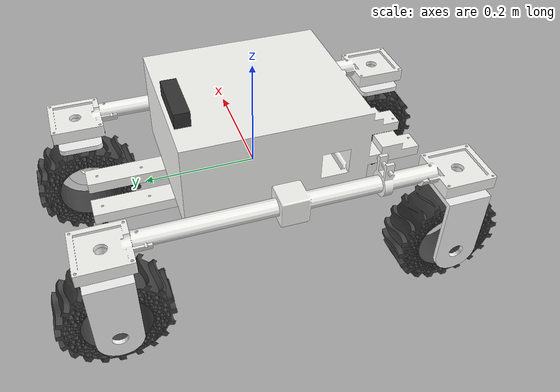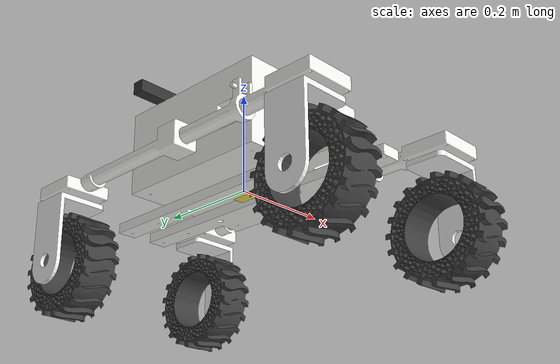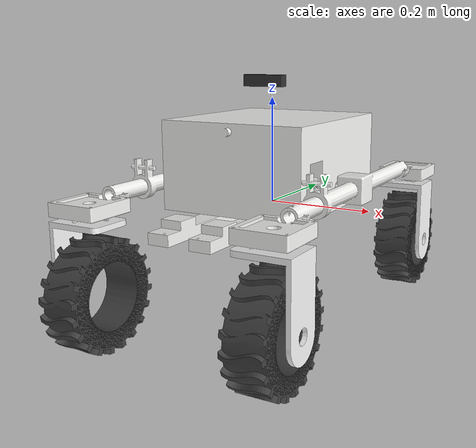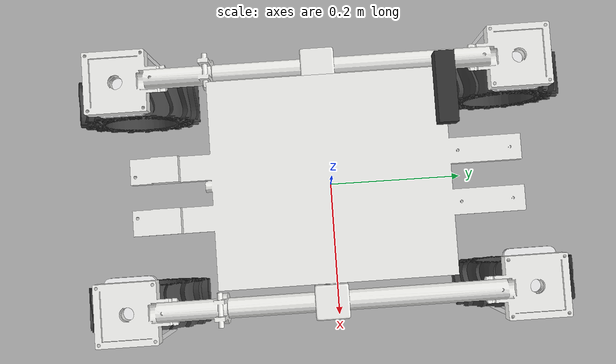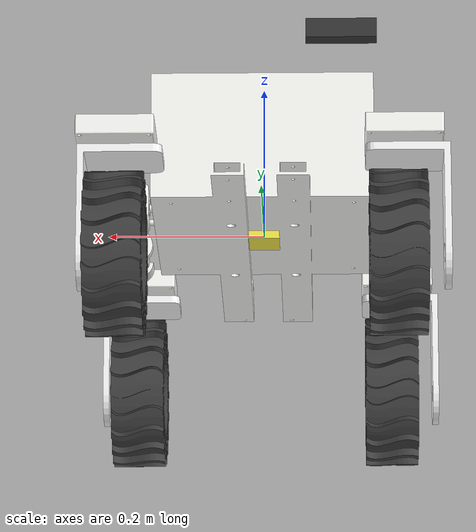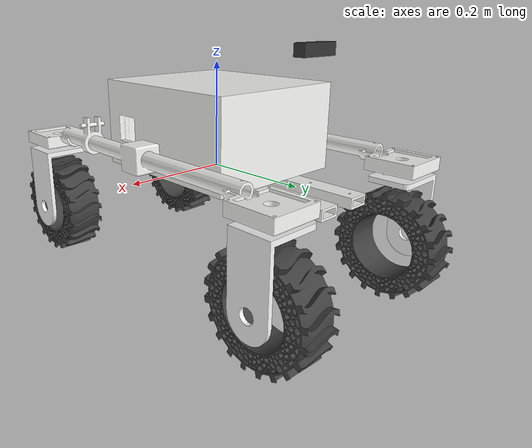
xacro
<?xml version="1.0" encoding="UTF-8"?>
<robot name="robot_mk2" xmlns:xacro="http://www.ros.org/wiki/xacro">
    <xacro:include filename="$(find rovermk2_description)/urdf/rovermk2.urdf" />
    <xacro:include filename="$(find rovermk2_description)/urdf/B2_mark_sensors.urdf" />

    <ros2_control name="rovermk2" type="system">
        <hardware>
            <plugin>gz_ros2_control/GazeboSimSystem</plugin>
        </hardware>

        <!-- Drive Joints -->
        <joint name="wheelFL_joint">
            <command_interface name="velocity" />
            <state_interface name="velocity" />
            <state_interface name="position" />
        </joint>
        <joint name="wheelFR_joint">
            <command_interface name="velocity" />
            <state_interface name="velocity" />
            <state_interface name="position" />
        </joint>
        <joint name="wheelBL_joint">
            <command_interface name="velocity" />
            <state_interface name="velocity" />
            <state_interface name="position" />
        </joint>
        <joint name="wheelBR_joint">
            <command_interface name="velocity" />
            <state_interface name="velocity" />
            <state_interface name="position" />
        </joint>

        <!-- Steer Joints -->
        <joint name="steerFL_joint">
            <command_interface name="position" />
            <state_interface name="position" />
            <state_interface name="velocity" />
        </joint>
        <joint name="steerFR_joint">
            <command_interface name="position" />
            <state_interface name="position" />
            <state_interface name="velocity" />
        </joint>
        <joint name="steerBL_joint">
            <command_interface name="position" />
            <state_interface name="position" />
            <state_interface name="velocity" />
        </joint>
        <joint name="steerBR_joint">
            <command_interface name="position" />
            <state_interface name="position" />
            <state_interface name="velocity" />
        </joint>
    </ros2_control>

    <!-- Ignition ros2_control plugin -->
    <gazebo>
        <plugin filename="libgz_ros2_control-system.so"
            name="gz_ros2_control::GazeboSimROS2ControlPlugin">
            <parameters>$(find rovermk2_description)/config/controller.yaml</parameters>
        </plugin>
    </gazebo>

    <gazebo>
        <plugin
            filename="ignition-gazebo-odometry-publisher-system"
            name="ignition::gazebo::systems::OdometryPublisher">
            <odom_frame>odom</odom_frame>
            <robot_base_frame>base_link</robot_base_frame>
            <odom_topic>/odom_raw</odom_topic>
            <tf_topic>/model/robot_mk2/tf</tf_topic>
            <update_rate>50</update_rate>
        </plugin>
    </gazebo>

</robot>

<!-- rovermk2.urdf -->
<robot name="rovermk2">

    <!-- Base Link  -->

    <link name="base_link">
        <inertial>
            <origin xyz="1.5107E-12 -0.010391 0.059342" rpy="0 0 0" />
            <mass value="20.0" />
            <inertia ixx="0.34424" ixy="1.4503E-11" ixz="-4.4546E-13"
                iyy="0.18723"
                iyz="0.00054354" izz="0.45979" />
        </inertial>
        <visual>
            <origin xyz="0 0 0" rpy="0 0 0" />
            <geometry>
                <mesh filename="package://rovermk2_description/meshes/base_link.STL" />
            </geometry>
            <material name="">
                <color rgba="0.96471 0.96471 0.95294 1" />
            </material>
        </visual>
        <collision>
            <origin xyz="0 0 0.05" rpy="0 0 0" />
            <geometry>
                <box size="0.75 0.35 0.15" />
            </geometry>
        </collision>
    </link>

    <!-- Suspension Links -->

    <link name="suspension_left">
        <inertial>
            <origin xyz="-0.085081 0.00042119 -0.0073347" rpy="0 0 0" />
            <mass value="5.0" />
            <inertia ixx="0.0029927" ixy="-1.1983E-09" ixz="-2.3018E-08"
                iyy="0.0104136"
                iyz="1.5973E-09" izz="0.0125038" />
        </inertial>
        <visual>
            <origin xyz="0.08875 0 0" rpy="0 0 0" />
            <geometry>
                <mesh filename="package://rovermk2_description/meshes/suspension_1.STL" />
            </geometry>
            <material name="">
                <color rgba="0.96471 0.96471 0.95294 1" />
            </material>
        </visual>
        <collision>
            <origin xyz="-0.085 0 -0.007" rpy="0 0 0" />
            <geometry>
                <box size="0.65 0.05 0.04" />
            </geometry>
        </collision>
    </link>

    <link name="suspension_right">
        <inertial>
            <origin xyz="0.0048172 -0.047933 -0.0073349" rpy="0 0 0" />
            <mass value="5.0" />
            <inertia ixx="0.0029927" ixy="-1.1983E-09" ixz="-2.3018E-08"
                iyy="0.0104136"
                iyz="1.5973E-09" izz="0.0125038" />
        </inertial>
        <visual>
            <origin xyz="0 0.0475 0" rpy="0 0 0" />
            <geometry>
                <mesh filename="package://rovermk2_description/meshes/suspension_2.STL" />
            </geometry>
            <material name="">
                <color rgba="0.96471 0.96471 0.95294 1" />
            </material>
        </visual>
        <collision>
            <origin xyz="0.005 -0.048 -0.007" rpy="0 0 0" />
            <geometry>
                <box size="0.65 0.05 0.04" />
            </geometry>
        </collision>
    </link>

    <!-- Suspension Joints Closed Loop thus with gazebo tags -->

    <joint name="susleft_joint" type="fixed">
        <origin xyz="-0.175 -0.01 0.043" rpy="0 0 -1.5708" />
        <parent link="base_link" />
        <child link="suspension_left" />
        <axis xyz="0 1 0" />
        <limit lower="-0.174" upper="0.174" effort="100" velocity="1" />
    </joint>

    <joint name="susright_joint" type="fixed">
        <origin xyz="0.175 -0.01 0.043" rpy="0 1.7626E-05 -1.5708" />
        <parent link="base_link" />
        <child link="suspension_right" />
        <axis xyz="0 1 0" />
        <limit lower="-0.174" upper="0.174" effort="100" velocity="1" />
    </joint>

    <!-- Steer Joints and Links -->

    <!-- Steer Front Left Joint and Link -->

    <link name="steerFL">
        <inertial>
            <origin xyz="-2.2204E-15 -0.032335 -0.05247" rpy="0 0 0" />
            <mass value="1.5" />
            <inertia ixx="0.0054624" ixy="-4.9661E-16" ixz="-1.2221E-15"
                iyy="0.0049171"
                iyz="-0.0013127" izz="0.0022330" />
        </inertial>
        <visual>
            <origin xyz="0 0 0" rpy="0 0 0" />
            <geometry>
                <mesh filename="package://rovermk2_description/meshes/Steer_FL_1.STL" />
            </geometry>
            <material name="">
                <color rgba="0.96078 0.96078 0.96471 1" />
            </material>
        </visual>
        <collision>
            <origin xyz="0 -0.032 -0.052" rpy="0 0 0" />
            <geometry>
                <box size="0.06 0.06 0.10" />
            </geometry>
        </collision>
    </link>
    <joint name="steerFL_joint" type="revolute">
        <origin xyz="-0.30875 0 -0.035" rpy="0 0 0" />
        <parent link="suspension_left" />
        <child link="steerFL" />
        <axis xyz="0 0 1" />
        <limit lower="-1.5708" upper="1.5708" effort="100" velocity="5.0"/>
        <dynamics damping="5.0" friction="2.0"/>
    </joint>

    <!-- Steer Front Right Joint and Link -->

    <link name="steer_FR">
        <inertial>
            <origin xyz="0.3075 0.025165 -0.08747" rpy="0 0 0" />
            <mass value="1.5" />
            <inertia ixx="0.0054624" ixy="-4.9661E-16" ixz="-1.2221E-15"
                iyy="0.0049171"
                iyz="-0.0013127" izz="0.0022330" />
        </inertial>
        <visual>
            <origin xyz="-0.30751 -0.0475 0" rpy="0 0 0" />
            <geometry>
                <mesh filename="package://rovermk2_description/meshes/steer_FR.STL" />
            </geometry>
            <material name="">
                <color rgba="0.96078 0.96078 0.96471 1" />
            </material>
        </visual>
        <collision>
            <origin xyz="0.3075 0.025 -0.087" rpy="0 0 0" />
            <geometry>
                <box size="0.06 0.06 0.10" />
            </geometry>
        </collision>
    </link>
    <joint name="steerFR_joint" type="revolute">
        <origin xyz="-0.30751 0.0 0" rpy="0 0 3.1416" />
        <parent link="suspension_right" />
        <child link="steer_FR" />
        <axis xyz="5.9526E-05 0 1" />
        <limit lower="-1.5708" upper="1.5708" effort="100" velocity="5.0"/>
        <dynamics damping="5.0" friction="2.0"/>

    </joint>

    <!-- Steer Back Left Joint and Link -->

    <link name="steer_BL">
        <inertial>
            <origin xyz="-2.7756E-15 -0.032335 -0.05247" rpy="0 0 0" />
            <mass value="1.5" />
            <inertia ixx="0.0054624" ixy="-4.9661E-16" ixz="-1.2221E-15"
                iyy="0.0049171"
                iyz="-0.0013127" izz="0.0022330" />
        </inertial>
        <visual>
            <origin xyz="0 0 0" rpy="0 0 0" />
            <geometry>
                <mesh filename="package://rovermk2_description/meshes/steer_BL.STL" />
            </geometry>
            <material name="">
                <color rgba="0.96078 0.96078 0.96471 1" />
            </material>
        </visual>
        <collision>
            <origin xyz="0 -0.032 -0.052" rpy="0 0 0" />
            <geometry>
                <box size="0.06 0.06 0.10" />
            </geometry>
        </collision>
    </link>
    <joint name="steerBL_joint" type="revolute">
        <origin xyz="0.30625 0 -0.035" rpy="0 0 0" />
        <parent link="suspension_left" />
        <child link="steer_BL" />
        <axis xyz="0 0 1" />
        <limit lower="-1.5708" upper="1.5708" effort="100" velocity="5.0"/>
        <dynamics damping="5.0" friction="2.0"/>

    </joint>

    <!-- Steer Back Right Joint and Link-->

    <link name="steer_BR">
        <inertial>
            <origin xyz="-0.30751 0.021928 -0.087669" rpy="0 0 0" />
            <mass value="1.5" />
            <inertia ixx="0.0054624" ixy="-4.9661E-16" ixz="-1.2221E-15"
                iyy="0.0049171"
                iyz="-0.0013127" izz="0.0022330" />
        </inertial>

        <visual>
            <origin xyz="0.30625 -0.0475 0" rpy="0 0 0" />
            <geometry>
                <mesh filename="package://rovermk2_description/meshes/steer_BR.STL" />
            </geometry>
            <material name="">
                <color rgba="0.96078 0.96078 0.96471 1" />
            </material>
        </visual>
        <collision>
            <origin xyz="-0.30751 0.022 -0.088" rpy="0 0 0" />
            <geometry>
                <box size="0.06 0.06 0.10" />
            </geometry>
        </collision>
    </link>
    <joint name="steerBR_joint" type="revolute">
        <origin xyz="0.30625 0.0 0.00019885" rpy="0 0 3.1416" />
        <parent link="suspension_right" />
        <child link="steer_BR" />
        <axis xyz="5.9526E-05 0 1" />
        <limit lower="-1.5708" upper="1.5708" effort="100" velocity="5.0"/>
        <dynamics damping="5.0" friction="2.0"/>

    </joint>

    <!-- All Wheels Joints and Links -->

    <link name="wheelFL">
        <inertial>
            <origin xyz="-1.2482E-05 1.1067E-05 -9.9464E-06" rpy="0 0 0" />
            <mass value="2.0" />
            <inertia ixx="0.0074488" ixy="-5.9009E-08" ixz="-3.0294E-07"
                iyy="0.0132488"
                iyz="2.9057E-08" izz="0.0074488" />
        </inertial>
        <visual>
            <origin xyz="0 0 0" rpy="0 0 0" />
            <geometry>
                <mesh filename="package://rovermk2_description/meshes/wheelFL.STL" />
            </geometry>
            <material name="">
                <color rgba="0.24706 0.24706 0.24706 1" />
            </material>
        </visual>
        <collision>
            <origin xyz="0 0 0" rpy="1.5708 0 0" />
            <geometry>
                <cylinder radius="0.09" length="0.07" />
            </geometry>
        </collision>
    </link>
    <joint name="wheelFL_joint" type="continuous">
        <origin xyz="0 0.008 -0.127" rpy="0 -0.031506 3.1416" />
        <parent link="steerFL" />
        <child link="wheelFL" />
        <axis xyz="0 1 0" />
    </joint>

    <link name="wheelBL">
        <inertial>
            <origin xyz="-1.4946E-05 8.1816E-06 -7.8177E-06" rpy="0 0 0" />
            <mass value="2.0" />
            <inertia ixx="0.0074488" ixy="-5.9009E-08" ixz="-3.0294E-07"
                iyy="0.0132488"
                iyz="2.9057E-08" izz="0.0074488" />
        </inertial>
        <visual>
            <origin xyz="0 0 0" rpy="0 0 0" />
            <geometry>
                <mesh filename="package://rovermk2_description/meshes/wheelBL.STL" />
            </geometry>
            <material name="">
                <color rgba="0.24706 0.24706 0.24706 1" />
            </material>
        </visual>
        <collision>
            <origin xyz="0 0 0" rpy="1.5708 0 0" />
            <geometry>
                <cylinder radius="0.09" length="0.07" />
            </geometry>
        </collision>
    </link>
    <joint name="wheelBL_joint" type="continuous">
        <origin xyz="0 0.008 -0.127" rpy="0 -0.19461 3.1416" />
        <parent link="steer_BL" />
        <child link="wheelBL" />
        <axis xyz="0 1 0" />
    </joint>

    <link name="wheelFR">
        <inertial>
            <origin xyz="-1.5082E-05 8.1816E-06 -6.5794E-06" rpy="0 0 0" />
            <mass value="2.0" />
            <inertia ixx="0.0074488" ixy="-5.9009E-08" ixz="-3.0294E-07"
                iyy="0.0132488"
                iyz="2.9057E-08" izz="0.0074488" />
        </inertial>
        <visual>
            <origin xyz="0 0 0" rpy="0 0 0" />
            <geometry>
                <mesh filename="package://rovermk2_description/meshes/wheelFR.STL" />
            </geometry>
            <material name="">
                <color rgba="0.24706 0.24706 0.24706 1" />
            </material>
        </visual>
        <collision>
            <origin xyz="0 0 0" rpy="1.5708 0 0" />
            <geometry>
                <cylinder radius="0.09" length="0.07" />
            </geometry>
        </collision>
    </link>
    <joint name="wheelFR_joint" type="continuous">
        <origin xyz="0.0 0.0 -0.162" rpy="0 -0.48916 0" />
        <parent link="steer_FR" />
        <child link="wheelFR" />
        <axis xyz="0 1 0" />
    </joint>

    <link name="wheelBR">
        <inertial>
            <origin xyz="-1.3322E-05 9.8794E-06 -8.7944E-06" rpy="0 0 0" />
            <mass value="2.0" />
            <inertia ixx="0.0074488" ixy="-5.9009E-08" ixz="-3.0294E-07"
                iyy="0.0132488"
                iyz="2.9057E-08" izz="0.0074488" />
        </inertial>
        <visual>
            <origin xyz="0 0 0" rpy="0 0 0" />
            <geometry>
                <mesh filename="package://rovermk2_description/meshes/wheelBR.STL" />
            </geometry>
            <material name="">
                <color rgba="0.24706 0.24706 0.24706 1" />
            </material>
        </visual>
        <collision>
            <origin xyz="0 0 0" rpy="1.5708 0 0" />
            <geometry>
                <cylinder radius="0.09" length="0.07" />
            </geometry>
        </collision>
    </link>
    <joint name="wheelBR_joint" type="continuous">
        <origin xyz="0 0.0 -0.1622" rpy="0 -0.069204 0" />
        <parent link="steer_BR" />
        <child link="wheelBR" />
        <axis xyz="0 1 0" />
    </joint>

</robot>

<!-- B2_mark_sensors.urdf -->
<robot name="rovermk2">

    <!-- IMU Sensor with gaussian -->
    <link name="imu_link">
        <visual>
            <geometry>
                <box size="0.05 0.05 0.02" />
            </geometry>
        </visual>
    </link>

    <joint name="imu_joint" type="fixed">
        <parent link="base_link" />
        <child link="imu_link" />
        <origin xyz="0 0 0" rpy="0 0 0" />
    </joint>

    <gazebo reference="imu_link">
        <sensor name="imu_sensor" type="imu">
            <always_on>1</always_on>
            <update_rate>100</update_rate>
            <topic>/imu</topic>
            <gz_frame_id>imu_link</gz_frame_id>
            <noise>
                <type>gaussian</type>
                <mean>0.0</mean>
                <stddev>0.02</stddev>
            </noise>
        </sensor>
    </gazebo>

    <!-- GPS Sensor -->
    <link name="gps_link">
        <visual>
            <geometry>
                <box size="0.05 0.05 0.02" />
            </geometry>
        </visual>
    </link>

    <joint name="gps_joint" type="fixed">
        <parent link="base_link" />
        <child link="gps_link" />
        <origin xyz="0 0 0" rpy="0 0 0" />
    </joint>

    <gazebo reference="gps_link">
        <sensor name="navsat_sensor" type="navsat">
            <always_on>1</always_on>
            <update_rate>100</update_rate>
            <topic>/gps</topic>
            <gz_frame_id>gps_link</gz_frame_id>
        </sensor>
    </gazebo>

    <!-- Depth Camera -->
    <link name="depth_camera_link">
        <visual>
            <geometry>
                <box size="0.09 0.025 0.025" />
            </geometry>
            <material name="">
                <color rgba="0.2 0.2 0.2 1" />
            </material>
        </visual>
        <collision>
            <geometry>
                <box size="0.09 0.025 0.025" />
            </geometry>
        </collision>
        <inertial>
            <mass value="0.1" />
            <inertia ixx="0.001" ixy="0" ixz="0" iyy="0.001" iyz="0" izz="0.001" />
        </inertial>
    </link>

    <joint name="depth_camera_joint" type="fixed">
        <parent link="base_link" />
        <child link="depth_camera_link" />
        <origin xyz="-0.1 0.15 0.225" rpy="0 0 0" />
    </joint>

    <link name="depth_camera_optical_frame" />

    <joint name="depth_camera_optical_joint" type="fixed">
        <parent link="depth_camera_link" />
        <child link="depth_camera_optical_frame" />
        <origin xyz="-0.1 0.15 0.225" rpy="0 0 0" />
    </joint>

    <gazebo reference="depth_camera_link">
        <sensor name="depth_camera" type="rgbd">
            <always_on>true</always_on>
            <update_rate>10</update_rate>
            <topic>/depth_camera</topic>
            <gz_frame_id>depth_camera_optical_frame</gz_frame_id>
            <camera>
                <horizontal_fov>1.047</horizontal_fov>
                <image>
                    <width>640</width>
                    <height>480</height>
                    <format>R8G8B8</format>
                </image>
                <clip>
                    <near>0.1</near>
                    <far>10.0</far>
                </clip>
            </camera>
        </sensor>
    </gazebo>

    <gazebo>
        <plugin
            filename="ignition-gazebo-odometry-publisher-system"
            name="ignition::gazebo::systems::OdometryPublisher">
            <ros>
                <namespace>/</namespace>
                <remapping>odom:=odom_raw</remapping>
                <parameter name="use_sim_time" type="bool">true</parameter>
            </ros>
            <body_name>base_link</body_name>
            <frame_name>odom</frame_name>
            <publish_odom_tf>true</publish_odom_tf>
            <update_rate>10</update_rate>
            <xyz_offset>0 0 0</xyz_offset>
            <rpy_offset>0 0 0</rpy_offset>
            <gaussian_noise>0.01</gaussian_noise>
        </plugin>
    </gazebo>

</robot>
